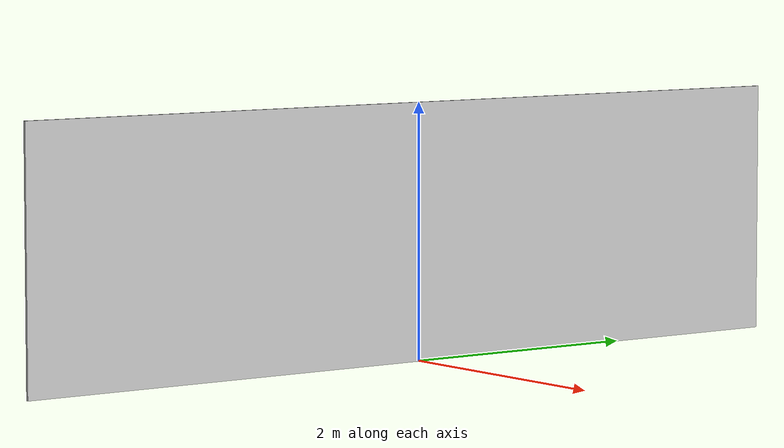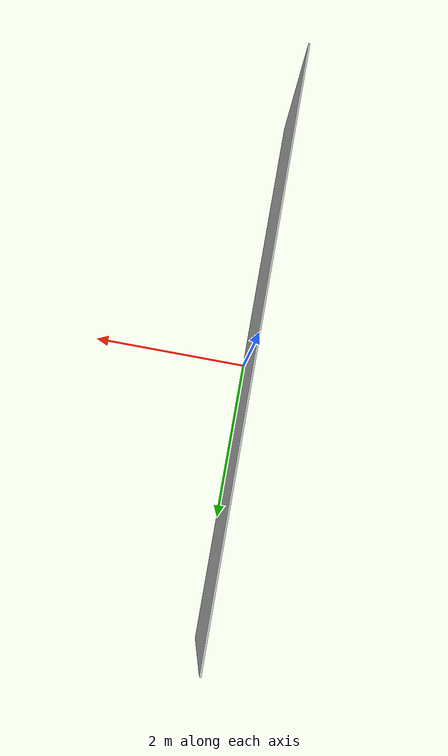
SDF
<?xml version='1.0' encoding='utf-8'?>
<sdf version="1.8">
	<model name="wall_5_2">
		<static>true</static>
      	<link name="box_link">
			<collision name="box_collision">
				<pose>0 0 1 0 0 0</pose>
				<geometry>
					<box>
						<size>0.05 7 2</size>
					</box>
				</geometry>
			</collision>
			<visual name="box_visual">
				<geometry>
					<mesh>
                        <uri>wall.dae</uri>
                    </mesh>
				</geometry>
			</visual>
      	</link>
    </model>
</sdf>
